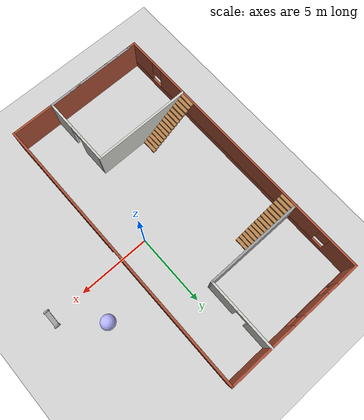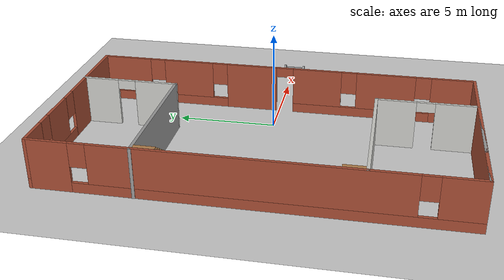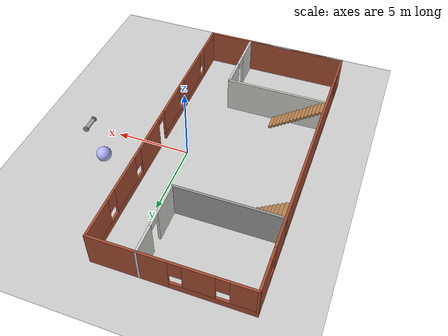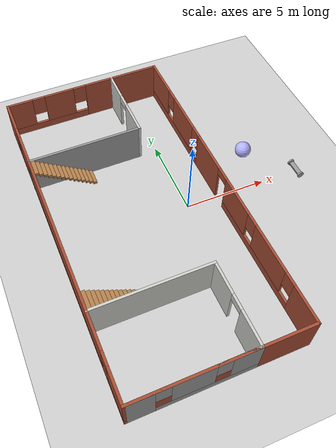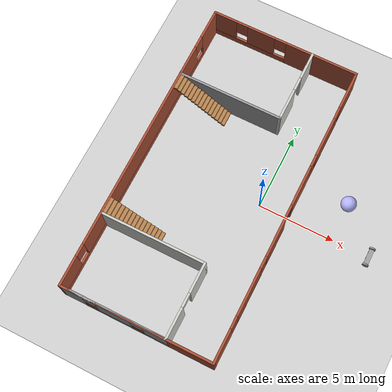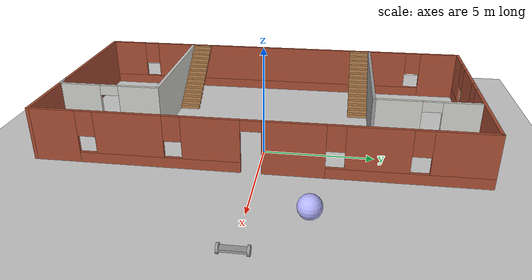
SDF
<sdf version="1.6">
 <world name="default">
  <model name="ground_plane">
   <static>1</static>
   <link name="link">
    <collision name="collision">
     <geometry><plane><normal>0 0 1</normal><size>100 100</size></plane></geometry>
     <surface>
      <contact><collide_bitmask>65535</collide_bitmask></contact>
      <friction><ode><mu>100</mu><mu2>50</mu2></ode></friction>
     </surface>
    </collision>
    <visual name="visual">
     <cast_shadows>0</cast_shadows>
     <geometry><plane><normal>0 0 1</normal><size>100 100</size></plane></geometry>
     <material>
      <script><uri>file://media/materials/scripts/gazebo.material</uri><name>Gazebo/Grey</name></script>
     </material>
    </visual>
   </link>
  </model>
  <model name="twowheelsrobotModel">
   <link name="link_0">
    <pose>0 0 0.2 0 -0 0</pose>
    <inertial>
     <mass>1</mass>
     <inertia>
      <ixx>0.166667</ixx>
      <ixy>0</ixy>
      <ixz>0</ixz>
      <iyy>0.166667</iyy>
      <iyz>0</iyz>
      <izz>0.166667</izz>
     </inertia>
    </inertial>
    <visual name="visual">
     <geometry><box><size>0.3 1 0.1</size></box></geometry>
     <material>
      <lighting>1</lighting>
      <script><uri>file://media/materials/scripts/gazebo.material</uri><name>Gazebo/Grey</name></script>
      <shader type="pixel"><normal_map>__default__</normal_map></shader>
      <ambient>0.3 0.3 0.3 1</ambient>
      <diffuse>0.7 0.7 0.7 1</diffuse>
      <specular>0.01 0.01 0.01 1</specular>
      <emissive>0 0 0 1</emissive>
     </material>
    </visual>
    <collision name="collision">
     <geometry><box><size>0.3 1 0.1</size></box></geometry>
     <surface>
      <friction>
       <ode><mu>1</mu><mu2>1</mu2><fdir1>0 0 0</fdir1><slip1>0</slip1><slip2>0</slip2></ode>
       <torsional>
        <coefficient>1</coefficient>
        <patch_radius>0</patch_radius>
        <surface_radius>0</surface_radius>
        <use_patch_radius>1</use_patch_radius>
        <ode><slip>0</slip></ode>
       </torsional>
      </friction>
      <bounce><restitution_coefficient>0</restitution_coefficient><threshold>1e+06</threshold></bounce>
      <contact>
       <collide_without_contact>0</collide_without_contact>
       <collide_without_contact_bitmask>1</collide_without_contact_bitmask>
       <collide_bitmask>1</collide_bitmask>
       <ode>
        <soft_cfm>0</soft_cfm>
        <soft_erp>0.2</soft_erp>
        <kp>1e+13</kp>
        <kd>1</kd>
        <max_vel>0.01</max_vel>
        <min_depth>0</min_depth>
       </ode>
       <bullet>
        <split_impulse>1</split_impulse>
        <split_impulse_penetration_threshold>-0.01</split_impulse_penetration_threshold>
        <soft_cfm>0</soft_cfm>
        <soft_erp>0.2</soft_erp>
        <kp>1e+13</kp>
        <kd>1</kd>
       </bullet>
      </contact>
     </surface>
    </collision>
   </link>
   <link name="link_1">
    <pose>0 -0.550019 0.2 1.5707 -0 0</pose>
    <inertial>
     <mass>1</mass>
     <inertia><ixx>0.145833</ixx><ixy>0</ixy><ixz>0</ixz><iyy>0.145833</iyy><iyz>0</iyz><izz>0.125</izz></inertia>
    </inertial>
    <visual name="visual">
     <geometry><cylinder><radius>0.2</radius><length>0.1</length></cylinder></geometry>
     <material>
      <lighting>1</lighting>
      <script><uri>file://media/materials/scripts/gazebo.material</uri><name>Gazebo/Grey</name></script>
      <shader type="pixel"><normal_map>__default__</normal_map></shader>
      <ambient>0.3 0.3 0.3 1</ambient>
      <diffuse>0.7 0.7 0.7 1</diffuse>
      <specular>0.01 0.01 0.01 1</specular>
      <emissive>0 0 0 1</emissive>
     </material>
    </visual>
    <collision name="collision">
     <geometry><cylinder><radius>0.2</radius><length>0.1</length></cylinder></geometry>
     <surface>
      <friction>
       <ode><mu>1</mu><mu2>1</mu2><fdir1>0 0 0</fdir1><slip1>0</slip1><slip2>0</slip2></ode>
       <torsional>
        <coefficient>1</coefficient>
        <patch_radius>0</patch_radius>
        <surface_radius>0</surface_radius>
        <use_patch_radius>1</use_patch_radius>
        <ode><slip>0</slip></ode>
       </torsional>
      </friction>
      <bounce><restitution_coefficient>0</restitution_coefficient><threshold>1e+06</threshold></bounce>
      <contact>
       <collide_without_contact>0</collide_without_contact>
       <collide_without_contact_bitmask>1</collide_without_contact_bitmask>
       <collide_bitmask>1</collide_bitmask>
       <ode>
        <soft_cfm>0</soft_cfm>
        <soft_erp>0.2</soft_erp>
        <kp>1e+13</kp>
        <kd>1</kd>
        <max_vel>0.01</max_vel>
        <min_depth>0</min_depth>
       </ode>
       <bullet>
        <split_impulse>1</split_impulse>
        <split_impulse_penetration_threshold>-0.01</split_impulse_penetration_threshold>
        <soft_cfm>0</soft_cfm>
        <soft_erp>0.2</soft_erp>
        <kp>1e+13</kp>
        <kd>1</kd>
       </bullet>
      </contact>
     </surface>
    </collision>
   </link>
   <link name="link_1_clone">
    <pose>0 0.550019 0.2 1.5707 -0 0</pose>
    <inertial>
     <mass>1</mass>
     <inertia><ixx>0.145833</ixx><ixy>0</ixy><ixz>0</ixz><iyy>0.145833</iyy><iyz>0</iyz><izz>0.125</izz></inertia>
    </inertial>
    <visual name="visual">
     <geometry><cylinder><radius>0.2</radius><length>0.1</length></cylinder></geometry>
     <material>
      <lighting>1</lighting>
      <script><uri>file://media/materials/scripts/gazebo.material</uri><name>Gazebo/Grey</name></script>
      <shader type="pixel"><normal_map>__default__</normal_map></shader>
      <ambient>0.3 0.3 0.3 1</ambient>
      <diffuse>0.7 0.7 0.7 1</diffuse>
      <specular>0.01 0.01 0.01 1</specular>
      <emissive>0 0 0 1</emissive>
     </material>
    </visual>
    <collision name="collision">
     <geometry><cylinder><radius>0.2</radius><length>0.1</length></cylinder></geometry>
     <surface>
      <friction>
       <ode><mu>1</mu><mu2>1</mu2><fdir1>0 0 0</fdir1><slip1>0</slip1><slip2>0</slip2></ode>
       <torsional>
        <coefficient>1</coefficient>
        <patch_radius>0</patch_radius>
        <surface_radius>0</surface_radius>
        <use_patch_radius>1</use_patch_radius>
        <ode><slip>0</slip></ode>
       </torsional>
      </friction>
      <bounce><restitution_coefficient>0</restitution_coefficient><threshold>1e+06</threshold></bounce>
      <contact>
       <collide_without_contact>0</collide_without_contact>
       <collide_without_contact_bitmask>1</collide_without_contact_bitmask>
       <collide_bitmask>1</collide_bitmask>
       <ode>
        <soft_cfm>0</soft_cfm>
        <soft_erp>0.2</soft_erp>
        <kp>1e+13</kp>
        <kd>1</kd>
        <max_vel>0.01</max_vel>
        <min_depth>0</min_depth>
       </ode>
       <bullet>
        <split_impulse>1</split_impulse>
        <split_impulse_penetration_threshold>-0.01</split_impulse_penetration_threshold>
        <soft_cfm>0</soft_cfm>
        <soft_erp>0.2</soft_erp>
        <kp>1e+13</kp>
        <kd>1</kd>
       </bullet>
      </contact>
     </surface>
    </collision>
   </link>
   <joint name="link_0_JOINT_0" type="revolute">
    <parent>link_0</parent>
    <child>link_1</child>
    <axis>
     <xyz>0 0 1</xyz>
     <use_parent_model_frame>0</use_parent_model_frame>
     <limit>
      <lower>-1.79769e+308</lower>
      <upper>1.79769e+308</upper>
      <effort>-1</effort>
      <velocity>-1</velocity>
     </limit>
     <dynamics>
      <spring_reference>0</spring_reference>
      <spring_stiffness>0</spring_stiffness>
      <damping>0</damping>
     </dynamics>
    </axis>
    <physics>
     <ode><limit><cfm>0</cfm><erp>0.2</erp></limit><suspension><cfm>0</cfm><erp>0.2</erp></suspension></ode>
    </physics>
   </joint>
   <joint name="link_0_JOINT_1" type="revolute">
    <parent>link_0</parent>
    <child>link_1_clone</child>
    <axis>
     <xyz>0 0 1</xyz>
     <use_parent_model_frame>0</use_parent_model_frame>
     <limit>
      <lower>-1.79769e+308</lower>
      <upper>1.79769e+308</upper>
      <effort>-1</effort>
      <velocity>-1</velocity>
     </limit>
     <dynamics>
      <spring_reference>0</spring_reference>
      <spring_stiffness>0</spring_stiffness>
      <damping>0</damping>
     </dynamics>
    </axis>
    <physics>
     <ode><limit><cfm>0</cfm><erp>0.2</erp></limit><suspension><cfm>0</cfm><erp>0.2</erp></suspension></ode>
    </physics>
   </joint>
   <static>0</static>
   <pose>7.34774 0 5e-06 0 -0 0</pose>
  </model>
  <model name="building01">
   <pose>-3.01648 -0.202483 0 0 -0 1.57461</pose>
   <link name="Stairs_0">
    <visual name="Stairs_0_Visual_0">
     <pose>-4.49569 1.4753 0.083 0 -0 -3.14159</pose>
     <geometry><box><size>1 0.233333 0.166</size></box></geometry>
     <material>
      <script><uri>file://media/materials/scripts/gazebo.material</uri><name>Gazebo/Wood</name></script>
      <ambient>0.760784 0.662745 0.627451 1</ambient>
     </material>
     <meta><layer>0</layer></meta>
    </visual>
    <collision name="Stairs_0_Collision_0">
     <geometry><box><size>1 0.233333 0.166</size></box></geometry>
     <pose>-4.49569 1.4753 0.083 0 -0 -3.14159</pose>
    </collision>
    <visual name="Stairs_0_Visual_1">
     <pose>-4.49569 1.70863 0.249 0 -0 -3.14159</pose>
     <geometry><box><size>1 0.233333 0.166</size></box></geometry>
     <material>
      <script><uri>file://media/materials/scripts/gazebo.material</uri><name>Gazebo/Wood</name></script>
      <ambient>0.760784 0.662745 0.627451 1</ambient>
     </material>
     <meta><layer>0</layer></meta>
    </visual>
    <collision name="Stairs_0_Collision_1">
     <geometry><box><size>1 0.233333 0.166</size></box></geometry>
     <pose>-4.49569 1.70863 0.249 0 -0 -3.14159</pose>
    </collision>
    <visual name="Stairs_0_Visual_2">
     <pose>-4.49569 1.94196 0.415 0 -0 -3.14159</pose>
     <geometry><box><size>1 0.233333 0.166</size></box></geometry>
     <material>
      <script><uri>file://media/materials/scripts/gazebo.material</uri><name>Gazebo/Wood</name></script>
      <ambient>0.760784 0.662745 0.627451 1</ambient>
     </material>
     <meta><layer>0</layer></meta>
    </visual>
    <collision name="Stairs_0_Collision_2">
     <geometry><box><size>1 0.233333 0.166</size></box></geometry>
     <pose>-4.49569 1.94196 0.415 0 -0 -3.14159</pose>
    </collision>
    <visual name="Stairs_0_Visual_3">
     <pose>-4.49569 2.1753 0.581 0 -0 -3.14159</pose>
     <geometry><box><size>1 0.233333 0.166</size></box></geometry>
     <material>
      <script><uri>file://media/materials/scripts/gazebo.material</uri><name>Gazebo/Wood</name></script>
      <ambient>0.760784 0.662745 0.627451 1</ambient>
     </material>
     <meta><layer>0</layer></meta>
    </visual>
    <collision name="Stairs_0_Collision_3">
     <geometry><box><size>1 0.233333 0.166</size></box></geometry>
     <pose>-4.49569 2.1753 0.581 0 -0 -3.14159</pose>
    </collision>
    <visual name="Stairs_0_Visual_4">
     <pose>-4.49569 2.40863 0.747 0 -0 -3.14159</pose>
     <geometry><box><size>1 0.233333 0.166</size></box></geometry>
     <material>
      <script><uri>file://media/materials/scripts/gazebo.material</uri><name>Gazebo/Wood</name></script>
      <ambient>0.760784 0.662745 0.627451 1</ambient>
     </material>
     <meta><layer>0</layer></meta>
    </visual>
    <collision name="Stairs_0_Collision_4">
     <geometry><box><size>1 0.233333 0.166</size></box></geometry>
     <pose>-4.49569 2.40863 0.747 0 -0 -3.14159</pose>
    </collision>
    <visual name="Stairs_0_Visual_5">
     <pose>-4.49569 2.64196 0.913 0 -0 -3.14159</pose>
     <geometry><box><size>1 0.233333 0.166</size></box></geometry>
     <material>
      <script><uri>file://media/materials/scripts/gazebo.material</uri><name>Gazebo/Wood</name></script>
      <ambient>0.760784 0.662745 0.627451 1</ambient>
     </material>
     <meta><layer>0</layer></meta>
    </visual>
    <collision name="Stairs_0_Collision_5">
     <geometry><box><size>1 0.233333 0.166</size></box></geometry>
     <pose>-4.49569 2.64196 0.913 0 -0 -3.14159</pose>
    </collision>
    <visual name="Stairs_0_Visual_6">
     <pose>-4.49569 2.87529 1.079 0 -0 -3.14159</pose>
     <geometry><box><size>1 0.233333 0.166</size></box></geometry>
     <material>
      <script><uri>file://media/materials/scripts/gazebo.material</uri><name>Gazebo/Wood</name></script>
      <ambient>0.760784 0.662745 0.627451 1</ambient>
     </material>
     <meta><layer>0</layer></meta>
    </visual>
    <collision name="Stairs_0_Collision_6">
     <geometry><box><size>1 0.233333 0.166</size></box></geometry>
     <pose>-4.49569 2.87529 1.079 0 -0 -3.14159</pose>
    </collision>
    <visual name="Stairs_0_Visual_7">
     <pose>-4.49569 3.10863 1.245 0 -0 -3.14159</pose>
     <geometry><box><size>1 0.233333 0.166</size></box></geometry>
     <material>
      <script><uri>file://media/materials/scripts/gazebo.material</uri><name>Gazebo/Wood</name></script>
      <ambient>0.760784 0.662745 0.627451 1</ambient>
     </material>
     <meta><layer>0</layer></meta>
    </visual>
    <collision name="Stairs_0_Collision_7">
     <geometry><box><size>1 0.233333 0.166</size></box></geometry>
     <pose>-4.49569 3.10863 1.245 0 -0 -3.14159</pose>
    </collision>
    <visual name="Stairs_0_Visual_8">
     <pose>-4.49569 3.34196 1.411 0 -0 -3.14159</pose>
     <geometry><box><size>1 0.233333 0.166</size></box></geometry>
     <material>
      <script><uri>file://media/materials/scripts/gazebo.material</uri><name>Gazebo/Wood</name></script>
      <ambient>0.760784 0.662745 0.627451 1</ambient>
     </material>
     <meta><layer>0</layer></meta>
    </visual>
    <collision name="Stairs_0_Collision_8">
     <geometry><box><size>1 0.233333 0.166</size></box></geometry>
     <pose>-4.49569 3.34196 1.411 0 -0 -3.14159</pose>
    </collision>
    <visual name="Stairs_0_Visual_9">
     <pose>-4.49569 3.5753 1.577 0 -0 -3.14159</pose>
     <geometry><box><size>1 0.233333 0.166</size></box></geometry>
     <material>
      <script><uri>file://media/materials/scripts/gazebo.material</uri><name>Gazebo/Wood</name></script>
      <ambient>0.760784 0.662745 0.627451 1</ambient>
     </material>
     <meta><layer>0</layer></meta>
    </visual>
    <collision name="Stairs_0_Collision_9">
     <geometry><box><size>1 0.233333 0.166</size></box></geometry>
     <pose>-4.49569 3.5753 1.577 0 -0 -3.14159</pose>
    </collision>
    <visual name="Stairs_0_Visual_10">
     <pose>-4.49569 3.80863 1.743 0 -0 -3.14159</pose>
     <geometry><box><size>1 0.233333 0.166</size></box></geometry>
     <material>
      <script><uri>file://media/materials/scripts/gazebo.material</uri><name>Gazebo/Wood</name></script>
      <ambient>0.760784 0.662745 0.627451 1</ambient>
     </material>
     <meta><layer>0</layer></meta>
    </visual>
    <collision name="Stairs_0_Collision_10">
     <geometry><box><size>1 0.233333 0.166</size></box></geometry>
     <pose>-4.49569 3.80863 1.743 0 -0 -3.14159</pose>
    </collision>
    <visual name="Stairs_0_Visual_11">
     <pose>-4.49569 4.04196 1.909 0 -0 -3.14159</pose>
     <geometry><box><size>1 0.233333 0.166</size></box></geometry>
     <material>
      <script><uri>file://media/materials/scripts/gazebo.material</uri><name>Gazebo/Wood</name></script>
      <ambient>0.760784 0.662745 0.627451 1</ambient>
     </material>
     <meta><layer>0</layer></meta>
    </visual>
    <collision name="Stairs_0_Collision_11">
     <geometry><box><size>1 0.233333 0.166</size></box></geometry>
     <pose>-4.49569 4.04196 1.909 0 -0 -3.14159</pose>
    </collision>
    <visual name="Stairs_0_Visual_12">
     <pose>-4.49569 4.27529 2.075 0 -0 -3.14159</pose>
     <geometry><box><size>1 0.233333 0.166</size></box></geometry>
     <material>
      <script><uri>file://media/materials/scripts/gazebo.material</uri><name>Gazebo/Wood</name></script>
      <ambient>0.760784 0.662745 0.627451 1</ambient>
     </material>
     <meta><layer>0</layer></meta>
    </visual>
    <collision name="Stairs_0_Collision_12">
     <geometry><box><size>1 0.233333 0.166</size></box></geometry>
     <pose>-4.49569 4.27529 2.075 0 -0 -3.14159</pose>
    </collision>
    <visual name="Stairs_0_Visual_13">
     <pose>-4.49569 4.50863 2.241 0 -0 -3.14159</pose>
     <geometry><box><size>1 0.233333 0.166</size></box></geometry>
     <material>
      <script><uri>file://media/materials/scripts/gazebo.material</uri><name>Gazebo/Wood</name></script>
      <ambient>0.760784 0.662745 0.627451 1</ambient>
     </material>
     <meta><layer>0</layer></meta>
    </visual>
    <collision name="Stairs_0_Collision_13">
     <geometry><box><size>1 0.233333 0.166</size></box></geometry>
     <pose>-4.49569 4.50863 2.241 0 -0 -3.14159</pose>
    </collision>
    <visual name="Stairs_0_Visual_14">
     <pose>-4.49569 4.74196 2.407 0 -0 -3.14159</pose>
     <geometry><box><size>1 0.233333 0.166</size></box></geometry>
     <material>
      <script><uri>file://media/materials/scripts/gazebo.material</uri><name>Gazebo/Wood</name></script>
      <ambient>0.760784 0.662745 0.627451 1</ambient>
     </material>
     <meta><layer>0</layer></meta>
    </visual>
    <collision name="Stairs_0_Collision_14">
     <geometry><box><size>1 0.233333 0.166</size></box></geometry>
     <pose>-4.49569 4.74196 2.407 0 -0 -3.14159</pose>
    </collision>
   </link>
   <link name="Stairs_1">
    <visual name="Stairs_1_Visual_0">
     <pose>4.50728 1.45825 0.083333 0 -0 -3.14159</pose>
     <geometry><box><size>1 0.233333 0.166667</size></box></geometry>
     <material>
      <script><uri>file://media/materials/scripts/gazebo.material</uri><name>Gazebo/Wood</name></script>
      <ambient>1 1 1 1</ambient>
     </material>
     <meta><layer>0</layer></meta>
    </visual>
    <collision name="Stairs_1_Collision_0">
     <geometry><box><size>1 0.233333 0.166667</size></box></geometry>
     <pose>4.50728 1.45825 0.083333 0 -0 -3.14159</pose>
    </collision>
    <visual name="Stairs_1_Visual_1">
     <pose>4.50728 1.69158 0.25 0 -0 -3.14159</pose>
     <geometry><box><size>1 0.233333 0.166667</size></box></geometry>
     <material>
      <script><uri>file://media/materials/scripts/gazebo.material</uri><name>Gazebo/Wood</name></script>
      <ambient>1 1 1 1</ambient>
     </material>
     <meta><layer>0</layer></meta>
    </visual>
    <collision name="Stairs_1_Collision_1">
     <geometry><box><size>1 0.233333 0.166667</size></box></geometry>
     <pose>4.50728 1.69158 0.25 0 -0 -3.14159</pose>
    </collision>
    <visual name="Stairs_1_Visual_2">
     <pose>4.50728 1.92491 0.416667 0 -0 -3.14159</pose>
     <geometry><box><size>1 0.233333 0.166667</size></box></geometry>
     <material>
      <script><uri>file://media/materials/scripts/gazebo.material</uri><name>Gazebo/Wood</name></script>
      <ambient>1 1 1 1</ambient>
     </material>
     <meta><layer>0</layer></meta>
    </visual>
    <collision name="Stairs_1_Collision_2">
     <geometry><box><size>1 0.233333 0.166667</size></box></geometry>
     <pose>4.50728 1.92491 0.416667 0 -0 -3.14159</pose>
    </collision>
    <visual name="Stairs_1_Visual_3">
     <pose>4.50728 2.15825 0.583333 0 -0 -3.14159</pose>
     <geometry><box><size>1 0.233333 0.166667</size></box></geometry>
     <material>
      <script><uri>file://media/materials/scripts/gazebo.material</uri><name>Gazebo/Wood</name></script>
      <ambient>1 1 1 1</ambient>
     </material>
     <meta><layer>0</layer></meta>
    </visual>
    <collision name="Stairs_1_Collision_3">
     <geometry><box><size>1 0.233333 0.166667</size></box></geometry>
     <pose>4.50728 2.15825 0.583333 0 -0 -3.14159</pose>
    </collision>
    <visual name="Stairs_1_Visual_4">
     <pose>4.50728 2.39158 0.75 0 -0 -3.14159</pose>
     <geometry><box><size>1 0.233333 0.166667</size></box></geometry>
     <material>
      <script><uri>file://media/materials/scripts/gazebo.material</uri><name>Gazebo/Wood</name></script>
      <ambient>1 1 1 1</ambient>
     </material>
     <meta><layer>0</layer></meta>
    </visual>
    <collision name="Stairs_1_Collision_4">
     <geometry><box><size>1 0.233333 0.166667</size></box></geometry>
     <pose>4.50728 2.39158 0.75 0 -0 -3.14159</pose>
    </collision>
    <visual name="Stairs_1_Visual_5">
     <pose>4.50728 2.62491 0.916667 0 -0 -3.14159</pose>
     <geometry><box><size>1 0.233333 0.166667</size></box></geometry>
     <material>
      <script><uri>file://media/materials/scripts/gazebo.material</uri><name>Gazebo/Wood</name></script>
      <ambient>1 1 1 1</ambient>
     </material>
     <meta><layer>0</layer></meta>
    </visual>
    <collision name="Stairs_1_Collision_5">
     <geometry><box><size>1 0.233333 0.166667</size></box></geometry>
     <pose>4.50728 2.62491 0.916667 0 -0 -3.14159</pose>
    </collision>
    <visual name="Stairs_1_Visual_6">
     <pose>4.50728 2.85825 1.08333 0 -0 -3.14159</pose>
     <geometry><box><size>1 0.233333 0.166667</size></box></geometry>
     <material>
      <script><uri>file://media/materials/scripts/gazebo.material</uri><name>Gazebo/Wood</name></script>
      <ambient>1 1 1 1</ambient>
     </material>
     <meta><layer>0</layer></meta>
    </visual>
    <collision name="Stairs_1_Collision_6">
     <geometry><box><size>1 0.233333 0.166667</size></box></geometry>
     <pose>4.50728 2.85825 1.08333 0 -0 -3.14159</pose>
    </collision>
    <visual name="Stairs_1_Visual_7">
     <pose>4.50728 3.09158 1.25 0 -0 -3.14159</pose>
     <geometry><box><size>1 0.233333 0.166667</size></box></geometry>
     <material>
      <script><uri>file://media/materials/scripts/gazebo.material</uri><name>Gazebo/Wood</name></script>
      <ambient>1 1 1 1</ambient>
     </material>
     <meta><layer>0</layer></meta>
    </visual>
    <collision name="Stairs_1_Collision_7">
     <geometry><box><size>1 0.233333 0.166667</size></box></geometry>
     <pose>4.50728 3.09158 1.25 0 -0 -3.14159</pose>
    </collision>
    <visual name="Stairs_1_Visual_8">
     <pose>4.50728 3.32491 1.41667 0 -0 -3.14159</pose>
     <geometry><box><size>1 0.233333 0.166667</size></box></geometry>
     <material>
      <script><uri>file://media/materials/scripts/gazebo.material</uri><name>Gazebo/Wood</name></script>
      <ambient>1 1 1 1</ambient>
     </material>
     <meta><layer>0</layer></meta>
    </visual>
    <collision name="Stairs_1_Collision_8">
     <geometry><box><size>1 0.233333 0.166667</size></box></geometry>
     <pose>4.50728 3.32491 1.41667 0 -0 -3.14159</pose>
    </collision>
    <visual name="Stairs_1_Visual_9">
     <pose>4.50728 3.55825 1.58333 0 -0 -3.14159</pose>
     <geometry><box><size>1 0.233333 0.166667</size></box></geometry>
     <material>
      <script><uri>file://media/materials/scripts/gazebo.material</uri><name>Gazebo/Wood</name></script>
      <ambient>1 1 1 1</ambient>
     </material>
     <meta><layer>0</layer></meta>
    </visual>
    <collision name="Stairs_1_Collision_9">
     <geometry><box><size>1 0.233333 0.166667</size></box></geometry>
     <pose>4.50728 3.55825 1.58333 0 -0 -3.14159</pose>
    </collision>
    <visual name="Stairs_1_Visual_10">
     <pose>4.50728 3.79158 1.75 0 -0 -3.14159</pose>
     <geometry><box><size>1 0.233333 0.166667</size></box></geometry>
     <material>
      <script><uri>file://media/materials/scripts/gazebo.material</uri><name>Gazebo/Wood</name></script>
      <ambient>1 1 1 1</ambient>
     </material>
     <meta><layer>0</layer></meta>
    </visual>
    <collision name="Stairs_1_Collision_10">
     <geometry><box><size>1 0.233333 0.166667</size></box></geometry>
     <pose>4.50728 3.79158 1.75 0 -0 -3.14159</pose>
    </collision>
    <visual name="Stairs_1_Visual_11">
     <pose>4.50728 4.02491 1.91667 0 -0 -3.14159</pose>
     <geometry><box><size>1 0.233333 0.166667</size></box></geometry>
     <material>
      <script><uri>file://media/materials/scripts/gazebo.material</uri><name>Gazebo/Wood</name></script>
      <ambient>1 1 1 1</ambient>
     </material>
     <meta><layer>0</layer></meta>
    </visual>
    <collision name="Stairs_1_Collision_11">
     <geometry><box><size>1 0.233333 0.166667</size></box></geometry>
     <pose>4.50728 4.02491 1.91667 0 -0 -3.14159</pose>
    </collision>
    <visual name="Stairs_1_Visual_12">
     <pose>4.50728 4.25825 2.08333 0 -0 -3.14159</pose>
     <geometry><box><size>1 0.233333 0.166667</size></box></geometry>
     <material>
      <script><uri>file://media/materials/scripts/gazebo.material</uri><name>Gazebo/Wood</name></script>
      <ambient>1 1 1 1</ambient>
     </material>
     <meta><layer>0</layer></meta>
    </visual>
    <collision name="Stairs_1_Collision_12">
     <geometry><box><size>1 0.233333 0.166667</size></box></geometry>
     <pose>4.50728 4.25825 2.08333 0 -0 -3.14159</pose>
    </collision>
    <visual name="Stairs_1_Visual_13">
     <pose>4.50728 4.49158 2.25 0 -0 -3.14159</pose>
     <geometry><box><size>1 0.233333 0.166667</size></box></geometry>
     <material>
      <script><uri>file://media/materials/scripts/gazebo.material</uri><name>Gazebo/Wood</name></script>
      <ambient>1 1 1 1</ambient>
     </material>
     <meta><layer>0</layer></meta>
    </visual>
    <collision name="Stairs_1_Collision_13">
     <geometry><box><size>1 0.233333 0.166667</size></box></geometry>
     <pose>4.50728 4.49158 2.25 0 -0 -3.14159</pose>
    </collision>
    <visual name="Stairs_1_Visual_14">
     <pose>4.50728 4.72491 2.41667 0 -0 -3.14159</pose>
     <geometry><box><size>1 0.233333 0.166667</size></box></geometry>
     <material>
      <script><uri>file://media/materials/scripts/gazebo.material</uri><name>Gazebo/Wood</name></script>
      <ambient>1 1 1 1</ambient>
     </material>
     <meta><layer>0</layer></meta>
    </visual>
    <collision name="Stairs_1_Collision_14">
     <geometry><box><size>1 0.233333 0.166667</size></box></geometry>
     <pose>4.50728 4.72491 2.41667 0 -0 -3.14159</pose>
    </collision>
   </link>
   <link name="Wall_16">
    <pose>7.50105 -1.91931 0 0 -0 3.14159</pose>
    <visual name="Wall_16_Visual_0">
     <pose>-1.55703 0 1.25 0 -0 0</pose>
     <geometry><box><size>1.88594 0.15 2.5</size></box></geometry>
     <material>
      <script><uri>file://media/materials/scripts/gazebo.material</uri><name>Gazebo/CeilingTiled</name></script>
      <ambient>1 1 1 1</ambient>
     </material>
     <meta><layer>0</layer></meta>
    </visual>
    <collision name="Wall_16_Collision_0">
     <geometry><box><size>1.88594 0.15 2.5</size></box></geometry>
     <pose>-1.55703 0 1.25 0 -0 0</pose>
    </collision>
    <visual name="Wall_16_Visual_1">
     <pose>1.39297 0 1.25 0 -0 0</pose>
     <geometry><box><size>2.21406 0.15 2.5</size></box></geometry>
     <material>
      <script><uri>file://media/materials/scripts/gazebo.material</uri><name>Gazebo/CeilingTiled</name></script>
      <ambient>1 1 1 1</ambient>
     </material>
     <meta><layer>0</layer></meta>
    </visual>
    <collision name="Wall_16_Collision_1">
     <geometry><box><size>2.21406 0.15 2.5</size></box></geometry>
     <pose>1.39297 0 1.25 0 -0 0</pose>
    </collision>
    <visual name="Wall_16_Visual_2">
     <pose>-0.164063 0 2.25 0 -0 0</pose>
     <geometry><box><size>0.9 0.15 0.5</size></box></geometry>
     <material>
      <script><uri>file://media/materials/scripts/gazebo.material</uri><name>Gazebo/CeilingTiled</name></script>
      <ambient>1 1 1 1</ambient>
     </material>
     <meta><layer>0</layer></meta>
    </visual>
    <collision name="Wall_16_Collision_2">
     <geometry><box><size>0.9 0.15 0.5</size></box></geometry>
     <pose>-0.164063 0 2.25 0 -0 0</pose>
    </collision>
   </link>
   <link name="Wall_17">
    <collision name="Wall_17_Collision">
     <geometry><box><size>7 0.15 2.5</size></box></geometry>
     <pose>0 0 1.25 0 -0 0</pose>
    </collision>
    <visual name="Wall_17_Visual">
     <pose>0 0 1.25 0 -0 0</pose>
     <geometry><box><size>7 0.15 2.5</size></box></geometry>
     <material>
      <script><uri>file://media/materials/scripts/gazebo.material</uri><name>Gazebo/Grey</name></script>
      <ambient>1 1 1 1</ambient>
     </material>
     <meta><layer>0</layer></meta>
    </visual>
    <pose>5.07605 1.50569 0 0 -0 1.5708</pose>
   </link>
   <link name="Wall_3">
    <collision name="Wall_3_Collision">
     <geometry><box><size>10 0.15 2.5</size></box></geometry>
     <pose>0 0 1.25 0 -0 0</pose>
    </collision>
    <visual name="Wall_3_Visual">
     <pose>0 0 1.25 0 -0 0</pose>
     <geometry><box><size>10 0.15 2.5</size></box></geometry>
     <material>
      <script><uri>file://media/materials/scripts/gazebo.material</uri><name>Gazebo/Bricks</name></script>
      <ambient>1 1 1 1</ambient>
     </material>
     <meta><layer>0</layer></meta>
    </visual>
    <pose>-9.92605 -0.005693 0 0 0 -1.5708</pose>
   </link>
   <link name="Wall_4">
    <pose>-0.001048 -4.93069 0 0 -0 0</pose>
    <visual name="Wall_4_Visual_0">
     <pose>-8.8894 0 1.25 0 -0 0</pose>
     <geometry><box><size>2.22121 0.15 2.5</size></box></geometry>
     <material>
      <script><uri>file://media/materials/scripts/gazebo.material</uri><name>Gazebo/Bricks</name></script>
      <ambient>1 1 1 1</ambient>
     </material>
     <meta><layer>0</layer></meta>
    </visual>
    <collision name="Wall_4_Collision_0">
     <geometry><box><size>2.22121 0.15 2.5</size></box></geometry>
     <pose>-8.8894 0 1.25 0 -0 0</pose>
    </collision>
    <visual name="Wall_4_Visual_1">
     <pose>1.70737 0 1.25 0 -0 0</pose>
     <geometry><box><size>2.7101 0.15 2.5</size></box></geometry>
     <material>
      <script><uri>file://media/materials/scripts/gazebo.material</uri><name>Gazebo/Bricks</name></script>
      <ambient>1 1 1 1</ambient>
     </material>
     <meta><layer>0</layer></meta>
    </visual>
    <collision name="Wall_4_Collision_1">
     <geometry><box><size>2.7101 0.15 2.5</size></box></geometry>
     <pose>1.70737 0 1.25 0 -0 0</pose>
    </collision>
    <visual name="Wall_4_Visual_2">
     <pose>-4.16324 0 0.25 0 -0 0</pose>
     <geometry><box><size>7.23111 0.15 0.5</size></box></geometry>
     <material>
      <script><uri>file://media/materials/scripts/gazebo.material</uri><name>Gazebo/Bricks</name></script>
      <ambient>1 1 1 1</ambient>
     </material>
     <meta><layer>0</layer></meta>
    </visual>
    <collision name="Wall_4_Collision_2">
     <geometry><box><size>7.23111 0.15 0.5</size></box></geometry>
     <pose>-4.16324 0 0.25 0 -0 0</pose>
    </collision>
    <visual name="Wall_4_Visual_3">
     <pose>6.53121 0 0.25 0 -0 0</pose>
     <geometry><box><size>6.93758 0.15 0.5</size></box></geometry>
     <material>
      <script><uri>file://media/materials/scripts/gazebo.material</uri><name>Gazebo/Bricks</name></script>
      <ambient>1 1 1 1</ambient>
     </material>
     <meta><layer>0</layer></meta>
    </visual>
    <collision name="Wall_4_Collision_3">
     <geometry><box><size>6.93758 0.15 0.5</size></box></geometry>
     <pose>6.53121 0 0.25 0 -0 0</pose>
    </collision>
    <visual name="Wall_4_Visual_4">
     <pose>-5.44789 0 1.5 0 -0 0</pose>
     <geometry><box><size>3.06181 0.15 2</size></box></geometry>
     <material>
      <script><uri>file://media/materials/scripts/gazebo.material</uri><name>Gazebo/Bricks</name></script>
      <ambient>1 1 1 1</ambient>
     </material>
     <meta><layer>0</layer></meta>
    </visual>
    <collision name="Wall_4_Collision_4">
     <geometry><box><size>3.06181 0.15 2</size></box></geometry>
     <pose>-5.44789 0 1.5 0 -0 0</pose>
    </collision>
    <visual name="Wall_4_Visual_5">
     <pose>-1.83233 0 1.5 0 -0 0</pose>
     <geometry><box><size>2.56931 0.15 2</size></box></geometry>
     <material>
      <script><uri>file://media/materials/scripts/gazebo.material</uri><name>Gazebo/Bricks</name></script>
      <ambient>1 1 1 1</ambient>
     </material>
     <meta><layer>0</layer></meta>
    </visual>
    <collision name="Wall_4_Collision_5">
     <geometry><box><size>2.56931 0.15 2</size></box></geometry>
     <pose>-1.83233 0 1.5 0 -0 0</pose>
    </collision>
    <visual name="Wall_4_Visual_6">
     <pose>-1.83233 0 1.5 0 -0 0</pose>
     <geometry><box><size>2.56931 0.15 2</size></box></geometry>
     <material>
      <script><uri>file://media/materials/scripts/gazebo.material</uri><name>Gazebo/Bricks</name></script>
      <ambient>1 1 1 1</ambient>
     </material>
     <meta><layer>0</layer></meta>
    </visual>
    <collision name="Wall_4_Collision_6">
     <geometry><box><size>2.56931 0.15 2</size></box></geometry>
     <pose>-1.83233 0 1.5 0 -0 0</pose>
    </collision>
    <visual name="Wall_4_Visual_7">
     <pose>5.2123 0 1.5 0 -0 0</pose>
     <geometry><box><size>2.69976 0.15 2</size></box></geometry>
     <material>
      <script><uri>file://media/materials/scripts/gazebo.material</uri><name>Gazebo/Bricks</name></script>
      <ambient>1 1 1 1</ambient>
     </material>
     <meta><layer>0</layer></meta>
    </visual>
    <collision name="Wall_4_Collision_7">
     <geometry><box><size>2.69976 0.15 2</size></box></geometry>
     <pose>5.2123 0 1.5 0 -0 0</pose>
    </collision>
    <visual name="Wall_4_Visual_8">
     <pose>8.68109 0 1.5 0 -0 0</pose>
     <geometry><box><size>2.63782 0.15 2</size></box></geometry>
     <material>
      <script><uri>file://media/materials/scripts/gazebo.material</uri><name>Gazebo/Bricks</name></script>
      <ambient>1 1 1 1</ambient>
     </material>
     <meta><layer>0</layer></meta>
    </visual>
    <collision name="Wall_4_Collision_8">
     <geometry><box><size>2.63782 0.15 2</size></box></geometry>
     <pose>8.68109 0 1.5 0 -0 0</pose>
    </collision>
    <visual name="Wall_4_Visual_9">
     <pose>-7.37879 0 1.9 0 -0 0</pose>
     <geometry><box><size>0.8 0.15 1.2</size></box></geometry>
     <material>
      <script><uri>file://media/materials/scripts/gazebo.material</uri><name>Gazebo/Bricks</name></script>
      <ambient>1 1 1 1</ambient>
     </material>
     <meta><layer>0</layer></meta>
    </visual>
    <collision name="Wall_4_Collision_9">
     <geometry><box><size>0.8 0.15 1.2</size></box></geometry>
     <pose>-7.37879 0 1.9 0 -0 0</pose>
    </collision>
    <visual name="Wall_4_Visual_10">
     <pose>3.46242 0 1.9 0 -0 0</pose>
     <geometry><box><size>0.8 0.15 1.2</size></box></geometry>
     <material>
      <script><uri>file://media/materials/scripts/gazebo.material</uri><name>Gazebo/Bricks</name></script>
      <ambient>1 1 1 1</ambient>
     </material>
     <meta><layer>0</layer></meta>
    </visual>
    <collision name="Wall_4_Collision_10">
     <geometry><box><size>0.8 0.15 1.2</size></box></geometry>
     <pose>3.46242 0 1.9 0 -0 0</pose>
    </collision>
    <visual name="Wall_4_Visual_11">
     <pose>-3.51699 0 1.9 0 -0 0</pose>
     <geometry><box><size>0.8 0.15 1.2</size></box></geometry>
     <material>
      <script><uri>file://media/materials/scripts/gazebo.material</uri><name>Gazebo/Bricks</name></script>
      <ambient>1 1 1 1</ambient>
     </material>
     <meta><layer>0</layer></meta>
    </visual>
    <collision name="Wall_4_Collision_11">
     <geometry><box><size>0.8 0.15 1.2</size></box></geometry>
     <pose>-3.51699 0 1.9 0 -0 0</pose>
    </collision>
    <visual name="Wall_4_Visual_12">
     <pose>6.96218 0 1.9 0 -0 0</pose>
     <geometry><box><size>0.8 0.15 1.2</size></box></geometry>
     <material>
      <script><uri>file://media/materials/scripts/gazebo.material</uri><name>Gazebo/Bricks</name></script>
      <ambient>1 1 1 1</ambient>
     </material>
     <meta><layer>0</layer></meta>
    </visual>
    <collision name="Wall_4_Collision_12">
     <geometry><box><size>0.8 0.15 1.2</size></box></geometry>
     <pose>6.96218 0 1.9 0 -0 0</pose>
    </collision>
    <visual name="Wall_4_Visual_13">
     <pose>-0.09768 0 2.25 0 -0 0</pose>
     <geometry><box><size>0.9 0.15 0.5</size></box></geometry>
     <material>
      <script><uri>file://media/materials/scripts/gazebo.material</uri><name>Gazebo/Bricks</name></script>
      <ambient>1 1 1 1</ambient>
     </material>
     <meta><layer>0</layer></meta>
    </visual>
    <collision name="Wall_4_Collision_13">
     <geometry><box><size>0.9 0.15 0.5</size></box></geometry>
     <pose>-0.09768 0 2.25 0 -0 0</pose>
    </collision>
    <visual name="Wall_4_Visual_14">
     <pose>-0.09768 0 2.25 0 -0 0</pose>
     <geometry><box><size>0.9 0.15 0.5</size></box></geometry>
     <material>
      <script><uri>file://media/materials/scripts/gazebo.material</uri><name>Gazebo/Bricks</name></script>
      <ambient>1 1 1 1</ambient>
     </material>
     <meta><layer>0</layer></meta>
    </visual>
    <collision name="Wall_4_Collision_14">
     <geometry><box><size>0.9 0.15 0.5</size></box></geometry>
     <pose>-0.09768 0 2.25 0 -0 0</pose>
    </collision>
   </link>
   <link name="Wall_5">
    <pose>9.92395 -0.005693 0 0 -0 1.5708</pose>
    <visual name="Wall_5_Visual_0">
     <pose>-2.55931 0 1.25 0 -0 0</pose>
     <geometry><box><size>4.88137 0.15 2.5</size></box></geometry>
     <material>
      <script><uri>file://media/materials/scripts/gazebo.material</uri><name>Gazebo/Bricks</name></script>
      <ambient>1 1 1 1</ambient>
     </material>
     <meta><layer>0</layer></meta>
    </visual>
    <collision name="Wall_5_Collision_0">
     <geometry><box><size>4.88137 0.15 2.5</size></box></geometry>
     <pose>-2.55931 0 1.25 0 -0 0</pose>
    </collision>
    <visual name="Wall_5_Visual_1">
     <pose>2.44069 0 0.25 0 -0 0</pose>
     <geometry><box><size>5.11863 0.15 0.5</size></box></geometry>
     <material>
      <script><uri>file://media/materials/scripts/gazebo.material</uri><name>Gazebo/Bricks</name></script>
      <ambient>1 1 1 1</ambient>
     </material>
     <meta><layer>0</layer></meta>
    </visual>
    <collision name="Wall_5_Collision_1">
     <geometry><box><size>5.11863 0.15 0.5</size></box></geometry>
     <pose>2.44069 0 0.25 0 -0 0</pose>
    </collision>
    <visual name="Wall_5_Visual_2">
     <pose>1.62898 0 1.5 0 -0 0</pose>
     <geometry><box><size>1.89522 0.15 2</size></box></geometry>
     <material>
      <script><uri>file://media/materials/scripts/gazebo.material</uri><name>Gazebo/Bricks</name></script>
      <ambient>1 1 1 1</ambient>
     </material>
     <meta><layer>0</layer></meta>
    </visual>
    <collision name="Wall_5_Collision_2">
     <geometry><box><size>1.89522 0.15 2</size></box></geometry>
     <pose>1.62898 0 1.5 0 -0 0</pose>
    </collision>
    <visual name="Wall_5_Visual_3">
     <pose>4.1883 0 1.5 0 -0 0</pose>
     <geometry><box><size>1.62341 0.15 2</size></box></geometry>
     <material>
      <script><uri>file://media/materials/scripts/gazebo.material</uri><name>Gazebo/Bricks</name></script>
      <ambient>1 1 1 1</ambient>
     </material>
     <meta><layer>0</layer></meta>
    </visual>
    <collision name="Wall_5_Collision_3">
     <geometry><box><size>1.62341 0.15 2</size></box></geometry>
     <pose>4.1883 0 1.5 0 -0 0</pose>
    </collision>
    <visual name="Wall_5_Visual_4">
     <pose>0.281374 0 1.9 0 -0 0</pose>
     <geometry><box><size>0.8 0.15 1.2</size></box></geometry>
     <material>
      <script><uri>file://media/materials/scripts/gazebo.material</uri><name>Gazebo/Bricks</name></script>
      <ambient>1 1 1 1</ambient>
     </material>
     <meta><layer>0</layer></meta>
    </visual>
    <collision name="Wall_5_Collision_4">
     <geometry><box><size>0.8 0.15 1.2</size></box></geometry>
     <pose>0.281374 0 1.9 0 -0 0</pose>
    </collision>
    <visual name="Wall_5_Visual_5">
     <pose>2.97659 0 1.9 0 -0 0</pose>
     <geometry><box><size>0.8 0.15 1.2</size></box></geometry>
     <material>
      <script><uri>file://media/materials/scripts/gazebo.material</uri><name>Gazebo/Bricks</name></script>
      <ambient>1 1 1 1</ambient>
     </material>
     <meta><layer>0</layer></meta>
    </visual>
    <collision name="Wall_5_Collision_5">
     <geometry><box><size>0.8 0.15 1.2</size></box></geometry>
     <pose>2.97659 0 1.9 0 -0 0</pose>
    </collision>
   </link>
   <link name="Wall_6">
    <pose>-0.001048 4.91931 0 0 -0 3.14159</pose>
    <visual name="Wall_6_Visual_0">
     <pose>-8.96268 0 1.25 0 -0 0</pose>
     <geometry><box><size>2.07464 0.15 2.5</size></box></geometry>
     <material>
      <script><uri>file://media/materials/scripts/gazebo.material</uri><name>Gazebo/Bricks</name></script>
      <ambient>1 1 1 1</ambient>
     </material>
     <meta><layer>0</layer></meta>
    </visual>
    <collision name="Wall_6_Collision_0">
     <geometry><box><size>2.07464 0.15 2.5</size></box></geometry>
     <pose>-8.96268 0 1.25 0 -0 0</pose>
    </collision>
    <visual name="Wall_6_Visual_1">
     <pose>1.03732 0 0.25 0 -0 0</pose>
     <geometry><box><size>17.9254 0.15 0.5</size></box></geometry>
     <material>
      <script><uri>file://media/materials/scripts/gazebo.material</uri><name>Gazebo/Bricks</name></script>
      <ambient>1 1 1 1</ambient>
     </material>
     <meta><layer>0</layer></meta>
    </visual>
    <collision name="Wall_6_Collision_1">
     <geometry><box><size>17.9254 0.15 0.5</size></box></geometry>
     <pose>1.03732 0 0.25 0 -0 0</pose>
    </collision>
    <visual name="Wall_6_Visual_2">
     <pose>0.047396 0 1.5 0 -0 0</pose>
     <geometry><box><size>14.3455 0.15 2</size></box></geometry>
     <material>
      <script><uri>file://media/materials/scripts/gazebo.material</uri><name>Gazebo/Bricks</name></script>
      <ambient>1 1 1 1</ambient>
     </material>
     <meta><layer>0</layer></meta>
    </visual>
    <collision name="Wall_6_Collision_2">
     <geometry><box><size>14.3455 0.15 2</size></box></geometry>
     <pose>0.047396 0 1.5 0 -0 0</pose>
    </collision>
    <visual name="Wall_6_Visual_3">
     <pose>9.01008 0 1.5 0 -0 0</pose>
     <geometry><box><size>1.97985 0.15 2</size></box></geometry>
     <material>
      <script><uri>file://media/materials/scripts/gazebo.material</uri><name>Gazebo/Bricks</name></script>
      <ambient>1 1 1 1</ambient>
     </material>
     <meta><layer>0</layer></meta>
    </visual>
    <collision name="Wall_6_Collision_3">
     <geometry><box><size>1.97985 0.15 2</size></box></geometry>
     <pose>9.01008 0 1.5 0 -0 0</pose>
    </collision>
    <visual name="Wall_6_Visual_4">
     <pose>-7.52536 0 1.9 0 -0 0</pose>
     <geometry><box><size>0.8 0.15 1.2</size></box></geometry>
     <material>
      <script><uri>file://media/materials/scripts/gazebo.material</uri><name>Gazebo/Bricks</name></script>
      <ambient>1 1 1 1</ambient>
     </material>
     <meta><layer>0</layer></meta>
    </visual>
    <collision name="Wall_6_Collision_4">
     <geometry><box><size>0.8 0.15 1.2</size></box></geometry>
     <pose>-7.52536 0 1.9 0 -0 0</pose>
    </collision>
    <visual name="Wall_6_Visual_5">
     <pose>7.62015 0 1.9 0 -0 0</pose>
     <geometry><box><size>0.8 0.15 1.2</size></box></geometry>
     <material>
      <script><uri>file://media/materials/scripts/gazebo.material</uri><name>Gazebo/Bricks</name></script>
      <ambient>1 1 1 1</ambient>
     </material>
     <meta><layer>0</layer></meta>
    </visual>
    <collision name="Wall_6_Collision_5">
     <geometry><box><size>0.8 0.15 1.2</size></box></geometry>
     <pose>7.62015 0 1.9 0 -0 0</pose>
    </collision>
   </link>
   <link name="Wall_7">
    <pose>-9.92605 1.49431 0 0 0 -1.5708</pose>
    <visual name="Wall_7_Visual_0">
     <pose>-2.70841 0 1.25 0 -0 0</pose>
     <geometry><box><size>1.58318 0.15 2.5</size></box></geometry>
     <material>
      <script><uri>file://media/materials/scripts/gazebo.material</uri><name>Gazebo/Grey</name></script>
      <ambient>1 1 1 1</ambient>
     </material>
     <meta><layer>0</layer></meta>
    </visual>
    <collision name="Wall_7_Collision_0">
     <geometry><box><size>1.58318 0.15 2.5</size></box></geometry>
     <pose>-2.70841 0 1.25 0 -0 0</pose>
    </collision>
    <visual name="Wall_7_Visual_1">
     <pose>0.79159 0 0.25 0 -0 0</pose>
     <geometry><box><size>5.41682 0.15 0.5</size></box></geometry>
     <material>
      <script><uri>file://media/materials/scripts/gazebo.material</uri><name>Gazebo/Grey</name></script>
      <ambient>1 1 1 1</ambient>
     </material>
     <meta><layer>0</layer></meta>
    </visual>
    <collision name="Wall_7_Collision_1">
     <geometry><box><size>5.41682 0.15 0.5</size></box></geometry>
     <pose>0.79159 0 0.25 0 -0 0</pose>
    </collision>
    <visual name="Wall_7_Visual_2">
     <pose>0.011812 0 1.5 0 -0 0</pose>
     <geometry><box><size>2.25726 0.15 2</size></box></geometry>
     <material>
      <script><uri>file://media/materials/scripts/gazebo.material</uri><name>Gazebo/Grey</name></script>
      <ambient>1 1 1 1</ambient>
     </material>
     <meta><layer>0</layer></meta>
    </visual>
    <collision name="Wall_7_Collision_2">
     <geometry><box><size>2.25726 0.15 2</size></box></geometry>
     <pose>0.011812 0 1.5 0 -0 0</pose>
    </collision>
    <visual name="Wall_7_Visual_3">
     <pose>2.72022 0 1.5 0 -0 0</pose>
     <geometry><box><size>1.55956 0.15 2</size></box></geometry>
     <material>
      <script><uri>file://media/materials/scripts/gazebo.material</uri><name>Gazebo/Grey</name></script>
      <ambient>1 1 1 1</ambient>
     </material>
     <meta><layer>0</layer></meta>
    </visual>
    <collision name="Wall_7_Collision_3">
     <geometry><box><size>1.55956 0.15 2</size></box></geometry>
     <pose>2.72022 0 1.5 0 -0 0</pose>
    </collision>
    <visual name="Wall_7_Visual_4">
     <pose>-1.51682 0 1.9 0 -0 0</pose>
     <geometry><box><size>0.8 0.15 1.2</size></box></geometry>
     <material>
      <script><uri>file://media/materials/scripts/gazebo.material</uri><name>Gazebo/Grey</name></script>
      <ambient>1 1 1 1</ambient>
     </material>
     <meta><layer>0</layer></meta>
    </visual>
    <collision name="Wall_7_Collision_4">
     <geometry><box><size>0.8 0.15 1.2</size></box></geometry>
     <pose>-1.51682 0 1.9 0 -0 0</pose>
    </collision>
    <visual name="Wall_7_Visual_5">
     <pose>1.54044 0 1.9 0 -0 0</pose>
     <geometry><box><size>0.8 0.15 1.2</size></box></geometry>
     <material>
      <script><uri>file://media/materials/scripts/gazebo.material</uri><name>Gazebo/Grey</name></script>
      <ambient>1 1 1 1</ambient>
     </material>
     <meta><layer>0</layer></meta>
    </visual>
    <collision name="Wall_7_Collision_5">
     <geometry><box><size>0.8 0.15 1.2</size></box></geometry>
     <pose>1.54044 0 1.9 0 -0 0</pose>
    </collision>
   </link>
   <link name="Wall_8">
    <pose>-7.50105 -1.93069 0 0 -0 0</pose>
    <visual name="Wall_8_Visual_0">
     <pose>-1.45462 0 1.25 0 -0 0</pose>
     <geometry><box><size>2.09075 0.15 2.5</size></box></geometry>
     <material>
      <script><uri>file://media/materials/scripts/gazebo.material</uri><name>Gazebo/CeilingTiled</name></script>
      <ambient>1 1 1 1</ambient>
     </material>
     <meta><layer>0</layer></meta>
    </visual>
    <collision name="Wall_8_Collision_0">
     <geometry><box><size>2.09075 0.15 2.5</size></box></geometry>
     <pose>-1.45462 0 1.25 0 -0 0</pose>
    </collision>
    <visual name="Wall_8_Visual_1">
     <pose>1.49538 0 1.25 0 -0 0</pose>
     <geometry><box><size>2.00925 0.15 2.5</size></box></geometry>
     <material>
      <script><uri>file://media/materials/scripts/gazebo.material</uri><name>Gazebo/CeilingTiled</name></script>
      <ambient>1 1 1 1</ambient>
     </material>
     <meta><layer>0</layer></meta>
    </visual>
    <collision name="Wall_8_Collision_1">
     <geometry><box><size>2.00925 0.15 2.5</size></box></geometry>
     <pose>1.49538 0 1.25 0 -0 0</pose>
    </collision>
    <visual name="Wall_8_Visual_2">
     <pose>0.040752 0 2.25 0 -0 0</pose>
     <geometry><box><size>0.9 0.15 0.5</size></box></geometry>
     <material>
      <script><uri>file://media/materials/scripts/gazebo.material</uri><name>Gazebo/CeilingTiled</name></script>
      <ambient>1 1 1 1</ambient>
     </material>
     <meta><layer>0</layer></meta>
    </visual>
    <collision name="Wall_8_Collision_2">
     <geometry><box><size>0.9 0.15 0.5</size></box></geometry>
     <pose>0.040752 0 2.25 0 -0 0</pose>
    </collision>
   </link>
   <link name="Wall_9">
    <collision name="Wall_9_Collision">
     <geometry><box><size>7 0.15 2.5</size></box></geometry>
     <pose>0 0 1.25 0 -0 0</pose>
    </collision>
    <visual name="Wall_9_Visual">
     <pose>0 0 1.25 0 -0 0</pose>
     <geometry><box><size>7 0.15 2.5</size></box></geometry>
     <material>
      <script><uri>file://media/materials/scripts/gazebo.material</uri><name>Gazebo/CeilingTiled</name></script>
      <ambient>1 1 1 1</ambient>
     </material>
     <meta><layer>0</layer></meta>
    </visual>
    <pose>-5.07605 1.49431 0 0 -0 1.5708</pose>
   </link>
   <static>1</static>
  </model>
  <model name="ballbot">
   <link name="link_3">
    <pose>-5e-06 1e-06 0 0 -0 0</pose>
    <inertial>
     <mass>1</mass>
     <inertia><ixx>0.1</ixx><ixy>0</ixy><ixz>0</ixz><iyy>0.1</iyy><iyz>0</iyz><izz>0.1</izz></inertia>
    </inertial>
    <visual name="visual">
     <geometry><sphere><radius>0.5</radius></sphere></geometry>
     <material>
      <lighting>1</lighting>
      <script><uri>file://media/materials/scripts/gazebo.material</uri><name>Gazebo/Grey</name></script>
      <shader type="pixel"><normal_map>__default__</normal_map></shader>
      <ambient>0 0 1 1</ambient>
      <diffuse>0.7 0.7 1 1</diffuse>
      <specular>0.01 0.01 1 1</specular>
      <emissive>0 0 1 1</emissive>
     </material>
    </visual>
    <collision name="collision">
     <geometry><sphere><radius>0.5</radius></sphere></geometry>
     <surface>
      <friction>
       <ode><mu>1</mu><mu2>1</mu2><fdir1>0 0 0</fdir1><slip1>0</slip1><slip2>0</slip2></ode>
       <torsional>
        <coefficient>1</coefficient>
        <patch_radius>0</patch_radius>
        <surface_radius>0</surface_radius>
        <use_patch_radius>1</use_patch_radius>
        <ode><slip>0</slip></ode>
       </torsional>
      </friction>
      <bounce><restitution_coefficient>0</restitution_coefficient><threshold>1e+06</threshold></bounce>
      <contact>
       <collide_without_contact>0</collide_without_contact>
       <collide_without_contact_bitmask>1</collide_without_contact_bitmask>
       <collide_bitmask>1</collide_bitmask>
       <ode>
        <soft_cfm>0</soft_cfm>
        <soft_erp>0.2</soft_erp>
        <kp>1e+13</kp>
        <kd>1</kd>
        <max_vel>0.01</max_vel>
        <min_depth>0</min_depth>
       </ode>
       <bullet>
        <split_impulse>1</split_impulse>
        <split_impulse_penetration_threshold>-0.01</split_impulse_penetration_threshold>
        <soft_cfm>0</soft_cfm>
        <soft_erp>0.2</soft_erp>
        <kp>1e+13</kp>
        <kd>1</kd>
       </bullet>
      </contact>
     </surface>
    </collision>
   </link>
   <static>0</static>
   <pose>4.89722 2.43904 0.5 0 -0 0</pose>
  </model>
 </world>
</sdf>
